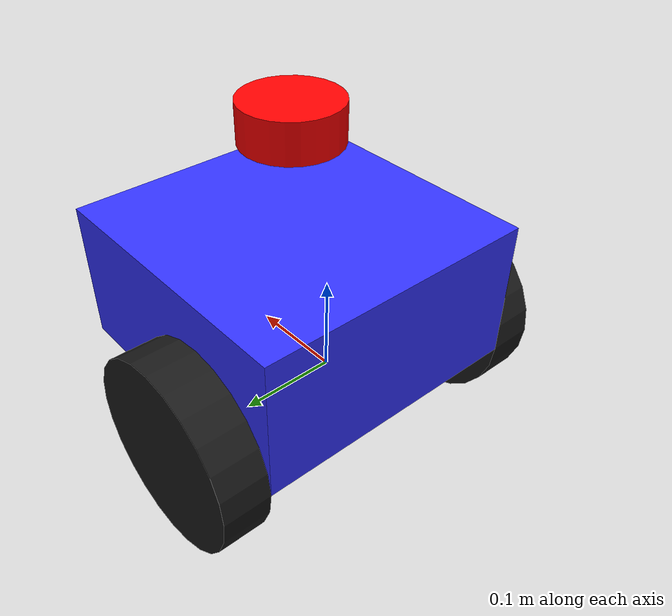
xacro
<?xml version="1.0"?>
<robot xmlns:xacro="http://www.ros.org/wiki/xacro" name="$(arg robot_name)">

  <xacro:arg name="robot_name" default="robot_1"/>
  <xacro:arg name="chassis_rgba" default="0.2 0.2 1 1"/>
  <xacro:property name="robot_name" value="$(arg robot_name)"/>
  <xacro:property name="chassis_rgba" value="$(arg chassis_rgba)"/>

  <!-- Include Core -->
  <xacro:include filename="robot_core.xacro" />

  <!-- Include Sensors -->
  <xacro:include filename="lidar.xacro" />
  <xacro:include filename="imu.xacro" />
  <xacro:include filename="camera.xacro" />

  <!-- Gazebo Sim Plugins (Native DiffDrive & Joint State Publisher) -->
  <gazebo>
    <plugin
      filename="gz-sim-diff-drive-system"
      name="gz::sim::systems::DiffDrive">
      <left_joint>left_wheel_joint</left_joint>
      <right_joint>right_wheel_joint</right_joint>
      <wheel_separation>0.35</wheel_separation>
      <wheel_radius>0.1</wheel_radius>
      <max_linear_acceleration>1.0</max_linear_acceleration>
      <min_linear_acceleration>-1.0</min_linear_acceleration>
      <max_angular_acceleration>2.0</max_angular_acceleration>
      <min_angular_acceleration>-2.0</min_angular_acceleration>
      <topic>/model/${robot_name}/cmd_vel</topic>
      <odom_topic>/model/${robot_name}/wheel_odometry</odom_topic>
      <tf_topic>/model/${robot_name}/wheel_tf</tf_topic>
      <frame_id>${robot_name}/odom</frame_id>
      <child_frame_id>${robot_name}/base_link</child_frame_id>
    </plugin>

    <plugin
      filename="gz-sim-joint-state-publisher-system"
      name="gz::sim::systems::JointStatePublisher">
      <topic>/model/${robot_name}/joint_states</topic>
    </plugin>
  </gazebo>

</robot>

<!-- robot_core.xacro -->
<robot xmlns:xacro="http://www.ros.org/wiki/xacro">

  <!-- Properties -->
  <xacro:property name="chassis_mass" value="5.0"/>
  <xacro:property name="wheel_mass" value="1.0"/>
  <xacro:property name="wheel_radius" value="0.1"/>
  <xacro:property name="wheel_thickness" value="0.05"/>
  <xacro:property name="wheel_separation" value="0.35"/>

  <!-- Base Link -->
  <link name="base_link">
  </link>

  <!-- Chassis -->
  <joint name="chassis_joint" type="fixed">
    <parent link="base_link"/>
    <child link="chassis"/>
    <origin xyz="-0.1 0 0" rpy="0 0 0"/>
  </joint>

  <link name="chassis">
    <visual>
      <origin xyz="0.15 0 0.075" rpy="0 0 0"/>
      <geometry>
        <box size="0.3 0.3 0.15"/>
      </geometry>
      <material name="blue">
        <color rgba="${chassis_rgba}"/>
      </material>
    </visual>
    <collision>
      <origin xyz="0.15 0 0.075" rpy="0 0 0"/>
      <geometry>
        <box size="0.3 0.3 0.15"/>
      </geometry>
    </collision>
    <inertial>
      <origin xyz="0.15 0 0.075" rpy="0 0 0"/>
      <mass value="${chassis_mass}"/>
      <inertia ixx="${chassis_mass/12 * (0.3*0.3 + 0.15*0.15)}" ixy="0" ixz="0"
               iyy="${chassis_mass/12 * (0.3*0.3 + 0.15*0.15)}" iyz="0"
               izz="${chassis_mass/12 * (0.3*0.3 + 0.3*0.3)}"/>
    </inertial>
  </link>

  <!-- Left Wheel -->
  <joint name="left_wheel_joint" type="continuous">
    <parent link="base_link"/>
    <child link="left_wheel"/>
    <origin xyz="0 ${wheel_separation/2} 0" rpy="-${pi/2} 0 0"/>
    <axis xyz="0 0 1"/>
  </joint>

  <link name="left_wheel">
    <visual>
      <geometry>
        <cylinder radius="${wheel_radius}" length="${wheel_thickness}"/>
      </geometry>
      <material name="black">
        <color rgba="0.1 0.1 0.1 1"/>
      </material>
    </visual>
    <collision>
      <geometry>
        <cylinder radius="${wheel_radius}" length="${wheel_thickness}"/>
      </geometry>
    </collision>
    <inertial>
      <mass value="${wheel_mass}"/>
      <inertia ixx="${wheel_mass/12 * (3*wheel_radius*wheel_radius + wheel_thickness*wheel_thickness)}" ixy="0" ixz="0"
               iyy="${wheel_mass/12 * (3*wheel_radius*wheel_radius + wheel_thickness*wheel_thickness)}" iyz="0"
               izz="${wheel_mass/2 * wheel_radius*wheel_radius}"/>
    </inertial>
  </link>

  <!-- Right Wheel -->
  <joint name="right_wheel_joint" type="continuous">
    <parent link="base_link"/>
    <child link="right_wheel"/>
    <origin xyz="0 -${wheel_separation/2} 0" rpy="${pi/2} 0 0"/>
    <axis xyz="0 0 -1"/>
  </joint>

  <link name="right_wheel">
    <visual>
      <geometry>
        <cylinder radius="${wheel_radius}" length="${wheel_thickness}"/>
      </geometry>
      <material name="black"/>
    </visual>
    <collision>
      <geometry>
        <cylinder radius="${wheel_radius}" length="${wheel_thickness}"/>
      </geometry>
    </collision>
    <inertial>
      <mass value="${wheel_mass}"/>
      <inertia ixx="${wheel_mass/12 * (3*wheel_radius*wheel_radius + wheel_thickness*wheel_thickness)}" ixy="0" ixz="0"
               iyy="${wheel_mass/12 * (3*wheel_radius*wheel_radius + wheel_thickness*wheel_thickness)}" iyz="0"
               izz="${wheel_mass/2 * wheel_radius*wheel_radius}"/>
    </inertial>
  </link>

  <gazebo reference="left_wheel">
    <mu1>1.0</mu1>
    <mu2>1.0</mu2>
  </gazebo>
  <gazebo reference="right_wheel">
    <mu1>1.0</mu1>
    <mu2>1.0</mu2>
  </gazebo>

  <!-- Caster Wheel -->
  <joint name="caster_joint" type="fixed">
    <parent link="chassis"/>
    <child link="caster_wheel"/>
    <origin xyz="0.2 0 -0.05" rpy="0 0 0"/>
  </joint>

  <link name="caster_wheel">
    <visual>
      <geometry>
        <sphere radius="0.05"/>
      </geometry>
      <material name="white">
        <color rgba="1 1 1 1"/>
      </material>
    </visual>
    <collision>
      <geometry>
        <sphere radius="0.05"/>
      </geometry>
    </collision>
    <inertial>
      <mass value="0.2"/>
      <inertia ixx="${0.2 * 0.4 * 0.05 * 0.05}" ixy="0" ixz="0"
               iyy="${0.2 * 0.4 * 0.05 * 0.05}" iyz="0"
               izz="${0.2 * 0.4 * 0.05 * 0.05}"/>
    </inertial>
  </link>
  <gazebo reference="caster_wheel">
    <mu1>0.001</mu1>
    <mu2>0.001</mu2>
  </gazebo>

  <!-- ros2_control Hardware -->
  <ros2_control name="GazeboSimSystem" type="system">
    <hardware>
      <plugin>gz_ros2_control/GazeboSimSystem</plugin>
    </hardware>
    <joint name="left_wheel_joint">
      <command_interface name="velocity">
        <param name="min">-10</param>
        <param name="max">10</param>
      </command_interface>
      <state_interface name="position"/>
      <state_interface name="velocity"/>
    </joint>
    <joint name="right_wheel_joint">
      <command_interface name="velocity">
        <param name="min">-10</param>
        <param name="max">10</param>
      </command_interface>
      <state_interface name="position"/>
      <state_interface name="velocity"/>
    </joint>
  </ros2_control>

  <!-- Gazebo Ground Truth Odometry Publisher (50Hz) -->
  <gazebo>
    <plugin filename="gz-sim-odometry-publisher-system" name="gz::sim::systems::OdometryPublisher">
      <odom_frame>${robot_name}/odom</odom_frame>
      <robot_base_frame>${robot_name}/base_link</robot_base_frame>
      <odom_topic>/model/${robot_name}/odometry</odom_topic>
      <tf_topic>/model/${robot_name}/tf</tf_topic>
      <dimensions>3</dimensions>
      <odom_publish_frequency>50</odom_publish_frequency>
    </plugin>
  </gazebo>

</robot>

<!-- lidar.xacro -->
<robot xmlns:xacro="http://www.ros.org/wiki/xacro">

  <joint name="laser_joint" type="fixed">
    <parent link="chassis"/>
    <child link="laser_frame"/>
    <origin xyz="0.15 0 0.25" rpy="0 0 0"/>
  </joint>

  <link name="laser_frame">
    <visual>
      <geometry>
        <cylinder radius="0.05" length="0.04"/>
      </geometry>
      <material name="red">
        <color rgba="1 0 0 1"/>
      </material>
    </visual>
    <collision>
      <geometry>
        <cylinder radius="0.05" length="0.04"/>
      </geometry>
    </collision>
    <inertial>
      <mass value="0.1"/>
      <inertia ixx="1e-5" ixy="0" ixz="0" iyy="1e-5" iyz="0" izz="1e-5"/>
    </inertial>
  </link>

  <gazebo reference="laser_frame">
    <sensor name="laser" type="gpu_lidar">
      <pose>0 0 0 0 0 0</pose>
      <topic>/model/${robot_name}/scan</topic>
      <frame_id>${robot_name}/laser_frame</frame_id>
      <update_rate>10</update_rate>
      <lidar>
        <scan>
          <horizontal>
            <samples>360</samples>
            <resolution>1</resolution>
            <min_angle>-3.14159</min_angle>
            <max_angle>3.14159</max_angle>
          </horizontal>
        </scan>
        <range>
          <min>0.15</min>
          <max>3.0</max>
          <resolution>0.01</resolution>
        </range>
        <noise>
          <type>gaussian</type>
          <mean>0.0</mean>
          <stddev>0.001</stddev>
        </noise>
      </lidar>
      <always_on>1</always_on>
      <visualize>true</visualize>
    </sensor>
  </gazebo>

</robot>

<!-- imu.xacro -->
<robot xmlns:xacro="http://www.ros.org/wiki/xacro">

  <joint name="imu_joint" type="fixed">
    <parent link="chassis"/>
    <child link="imu_link"/>
    <origin xyz="0 0 0.1" rpy="0 0 0"/>
  </joint>

  <link name="imu_link">
    <!-- IMU is virtually inside the chassis, no visual needed -->
  </link>

  <gazebo reference="imu_link">
    <sensor name="imu_sensor" type="imu">
      <always_on>1</always_on>
      <update_rate>100</update_rate>
      <topic>/model/${robot_name}/imu</topic>
      <frame_id>${robot_name}/imu_link</frame_id>
      <imu>
        <angular_velocity>
          <x><noise type="gaussian"><mean>0</mean><stddev>0.01</stddev></noise></x>
          <y><noise type="gaussian"><mean>0</mean><stddev>0.01</stddev></noise></y>
          <z><noise type="gaussian"><mean>0</mean><stddev>0.01</stddev></noise></z>
        </angular_velocity>
        <linear_acceleration>
          <x><noise type="gaussian"><mean>0</mean><stddev>0.01</stddev></noise></x>
          <y><noise type="gaussian"><mean>0</mean><stddev>0.01</stddev></noise></y>
          <z><noise type="gaussian"><mean>0</mean><stddev>0.01</stddev></noise></z>
        </linear_acceleration>
      </imu>
    </sensor>
  </gazebo>

</robot>

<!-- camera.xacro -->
<robot xmlns:xacro="http://www.ros.org/wiki/xacro">

  <joint name="camera_joint" type="fixed">
    <parent link="chassis"/>
    <child link="camera_link"/>
    <origin xyz="0.3 0 0.08" rpy="0 0 0"/>
  </joint>

  <link name="camera_link">
    <visual>
      <geometry>
        <box size="0.02 0.08 0.03"/>
      </geometry>
      <material name="black"/>
    </visual>
  </link>

  <joint name="camera_optical_joint" type="fixed">
    <parent link="camera_link"/>
    <child link="camera_link_optical"/>
    <origin xyz="0 0 0" rpy="${-pi/2} 0 ${-pi/2}"/>
  </joint>

  <link name="camera_link_optical"></link>

  <gazebo reference="camera_link">
    <sensor name="camera" type="rgbd_camera">
      <camera>
        <horizontal_fov>1.047</horizontal_fov>
        <image>
          <width>640</width>
          <height>480</height>
          <format>RGB_INT8</format>
        </image>
        <clip>
          <near>0.1</near>
          <far>100</far>
        </clip>
      </camera>
      <always_on>1</always_on>
      <update_rate>15</update_rate>
      <topic>/model/${robot_name}/camera</topic>
    </sensor>
  </gazebo>

</robot>
